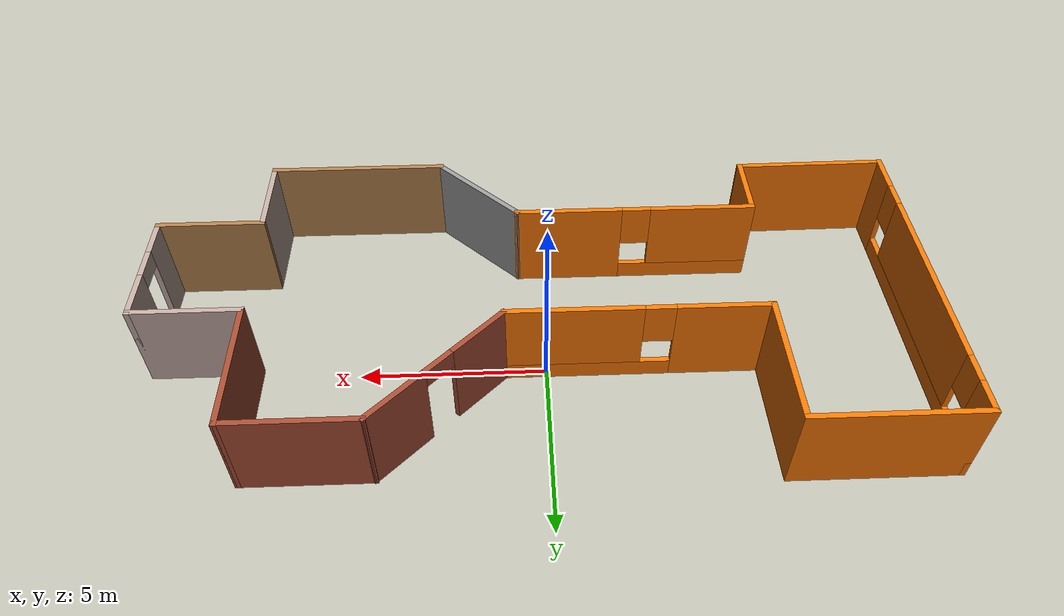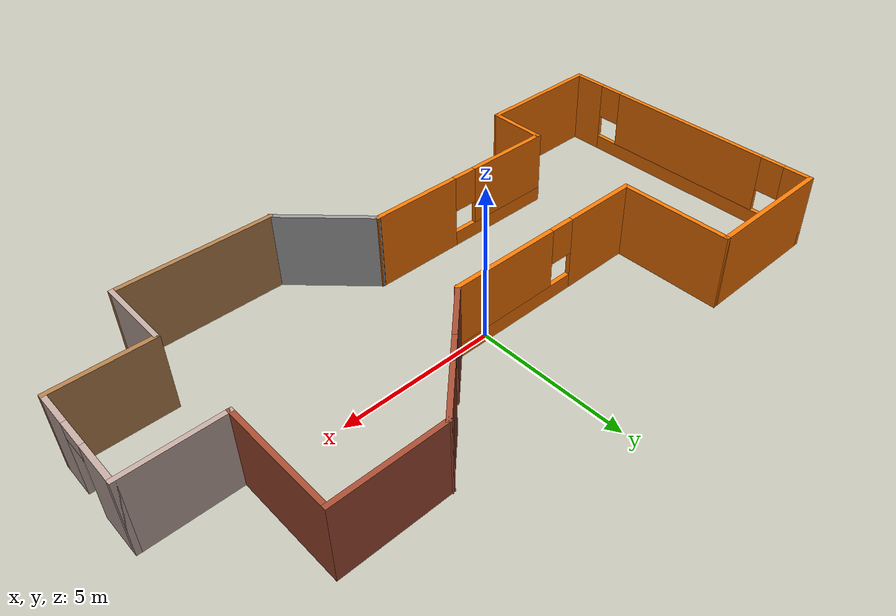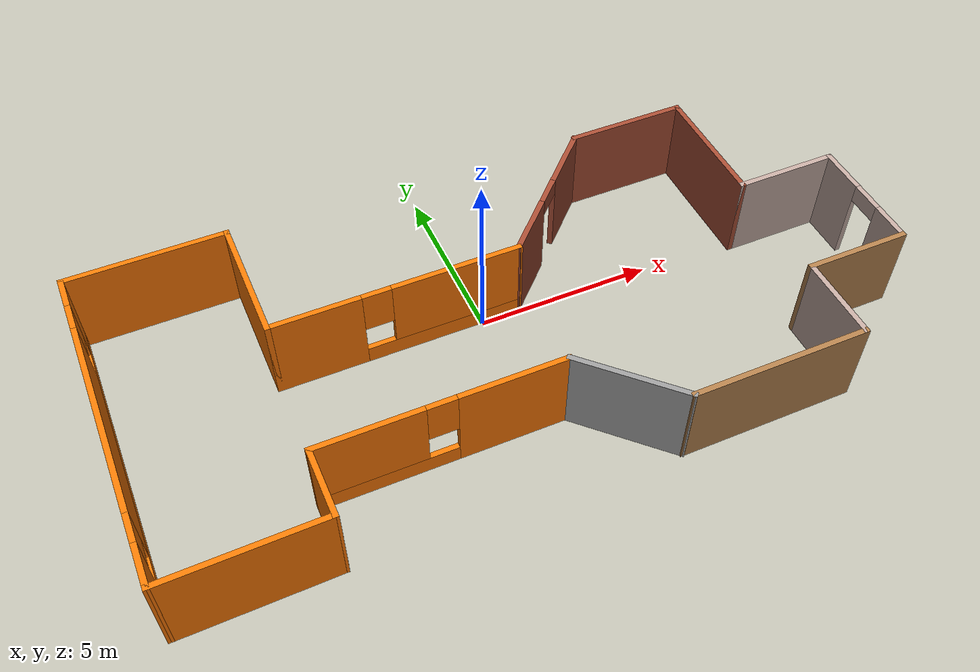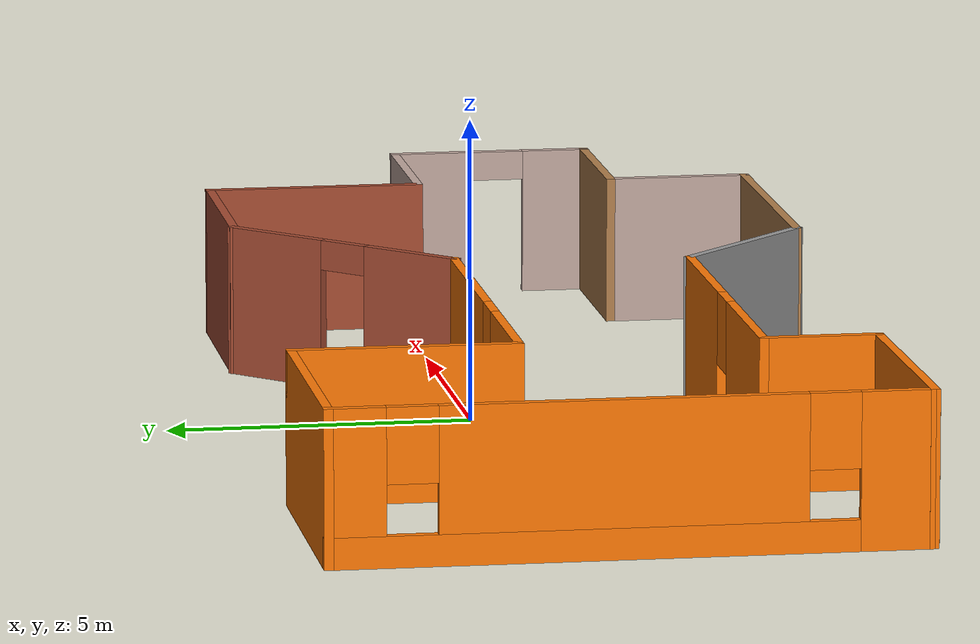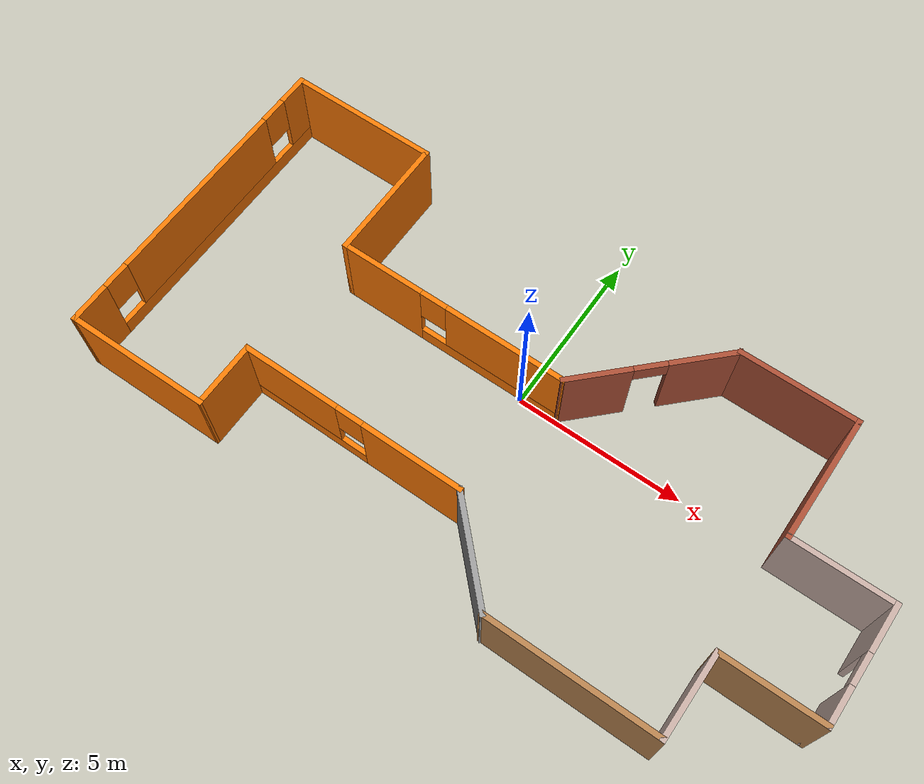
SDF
<?xml version='1.0'?>
<sdf version='1.6'>
  <model name='MyHome'>
    <pose frame=''>0.222356 -1.1403 0 0 -0 0</pose>
    <link name='Wall_1'>
      <pose frame=''>-10.3259 0.164187 0 0 -0 1.5708</pose>
      <visual name='Wall_1_Visual_0'>
        <pose frame=''>-4.13813 0 1.25 0 -0 0</pose>
        <geometry>
          <box>
            <size>1.22375 0.15 2.5</size>
          </box>
        </geometry>
        <material>
          <script>
            <uri>file://media/materials/scripts/gazebo.material</uri>
            <name>Gazebo/Grey</name>
          </script>
          <ambient>0.996078 0.47451 0.0196078 1</ambient>
        </material>
        <meta>
          <layer>0</layer>
        </meta>
      </visual>
      <collision name='Wall_1_Collision_0'>
        <geometry>
          <box>
            <size>1.22375 0.15 2.5</size>
          </box>
        </geometry>
        <pose frame=''>-4.13813 0 1.25 0 -0 0</pose>
      </collision>
      <visual name='Wall_1_Visual_1'>
        <pose frame=''>0.611873 0 0.25 0 -0 0</pose>
        <geometry>
          <box>
            <size>8.27626 0.15 0.5</size>
          </box>
        </geometry>
        <material>
          <script>
            <uri>file://media/materials/scripts/gazebo.material</uri>
            <name>Gazebo/Grey</name>
          </script>
          <ambient>0.996078 0.47451 0.0196078 1</ambient>
        </material>
        <meta>
          <layer>0</layer>
        </meta>
      </visual>
      <collision name='Wall_1_Collision_1'>
        <geometry>
          <box>
            <size>8.27626 0.15 0.5</size>
          </box>
        </geometry>
        <pose frame=''>0.611873 0 0.25 0 -0 0</pose>
      </collision>
      <visual name='Wall_1_Visual_2'>
        <pose frame=''>0.132144 0 1.5 0 -0 0</pose>
        <geometry>
          <box>
            <size>5.7168 0.15 2</size>
          </box>
        </geometry>
        <material>
          <script>
            <uri>file://media/materials/scripts/gazebo.material</uri>
            <name>Gazebo/Grey</name>
          </script>
          <ambient>0.996078 0.47451 0.0196078 1</ambient>
        </material>
        <meta>
          <layer>0</layer>
        </meta>
      </visual>
      <collision name='Wall_1_Collision_2'>
        <geometry>
          <box>
            <size>5.7168 0.15 2</size>
          </box>
        </geometry>
        <pose frame=''>0.132144 0 1.5 0 -0 0</pose>
      </collision>
      <visual name='Wall_1_Visual_3'>
        <pose frame=''>4.27027 0 1.5 0 -0 0</pose>
        <geometry>
          <box>
            <size>0.959458 0.15 2</size>
          </box>
        </geometry>
        <material>
          <script>
            <uri>file://media/materials/scripts/gazebo.material</uri>
            <name>Gazebo/Grey</name>
          </script>
          <ambient>0.996078 0.47451 0.0196078 1</ambient>
        </material>
        <meta>
          <layer>0</layer>
        </meta>
      </visual>
      <collision name='Wall_1_Collision_3'>
        <geometry>
          <box>
            <size>0.959458 0.15 2</size>
          </box>
        </geometry>
        <pose frame=''>4.27027 0 1.5 0 -0 0</pose>
      </collision>
      <visual name='Wall_1_Visual_4'>
        <pose frame=''>-3.12626 0 1.9 0 -0 0</pose>
        <geometry>
          <box>
            <size>0.8 0.15 1.2</size>
          </box>
        </geometry>
        <material>
          <script>
            <uri>file://media/materials/scripts/gazebo.material</uri>
            <name>Gazebo/Grey</name>
          </script>
          <ambient>0.996078 0.47451 0.0196078 1</ambient>
        </material>
        <meta>
          <layer>0</layer>
        </meta>
      </visual>
      <collision name='Wall_1_Collision_4'>
        <geometry>
          <box>
            <size>0.8 0.15 1.2</size>
          </box>
        </geometry>
        <pose frame=''>-3.12626 0 1.9 0 -0 0</pose>
      </collision>
      <visual name='Wall_1_Visual_5'>
        <pose frame=''>3.39054 0 1.9 0 -0 0</pose>
        <geometry>
          <box>
            <size>0.8 0.15 1.2</size>
          </box>
        </geometry>
        <material>
          <script>
            <uri>file://media/materials/scripts/gazebo.material</uri>
            <name>Gazebo/Grey</name>
          </script>
          <ambient>0.996078 0.47451 0.0196078 1</ambient>
        </material>
        <meta>
          <layer>0</layer>
        </meta>
      </visual>
      <collision name='Wall_1_Collision_5'>
        <geometry>
          <box>
            <size>0.8 0.15 1.2</size>
          </box>
        </geometry>
        <pose frame=''>3.39054 0 1.9 0 -0 0</pose>
      </collision>
    </link>
    <link name='Wall_10'>
      <collision name='Wall_10_Collision'>
        <geometry>
          <box>
            <size>3 0.15 2.5</size>
          </box>
        </geometry>
        <pose frame=''>0 0 1.25 0 -0 0</pose>
      </collision>
      <visual name='Wall_10_Visual'>
        <pose frame=''>0 0 1.25 0 -0 0</pose>
        <geometry>
          <box>
            <size>3 0.15 2.5</size>
          </box>
        </geometry>
        <material>
          <script>
            <uri>file://media/materials/scripts/gazebo.material</uri>
            <name>Gazebo/Wood</name>
          </script>
          <ambient>0.760784 0.662745 0.627451 1</ambient>
        </material>
        <meta>
          <layer>0</layer>
        </meta>
      </visual>
      <pose frame=''>8.90175 -2.45812 0 0 -0 3.14159</pose>
    </link>
    <link name='Wall_11'>
      <collision name='Wall_11_Collision'>
        <geometry>
          <box>
            <size>2.5 0.15 2.5</size>
          </box>
        </geometry>
        <pose frame=''>0 0 1.25 0 -0 0</pose>
      </collision>
      <visual name='Wall_11_Visual'>
        <pose frame=''>0 0 1.25 0 -0 0</pose>
        <geometry>
          <box>
            <size>2.5 0.15 2.5</size>
          </box>
        </geometry>
        <material>
          <script>
            <uri>file://media/materials/scripts/gazebo.material</uri>
            <name>Gazebo/Grey</name>
          </script>
          <ambient>0.760784 0.662745 0.627451 1</ambient>
        </material>
        <meta>
          <layer>0</layer>
        </meta>
      </visual>
      <pose frame=''>7.47675 -3.63312 0 0 -0 -1.5708</pose>
    </link>
    <link name='Wall_12'>
      <collision name='Wall_12_Collision'>
        <geometry>
          <box>
            <size>5 0.15 2.5</size>
          </box>
        </geometry>
        <pose frame=''>0 0 1.25 0 -0 0</pose>
      </collision>
      <visual name='Wall_12_Visual'>
        <pose frame=''>0 0 1.25 0 -0 0</pose>
        <geometry>
          <box>
            <size>5 0.15 2.5</size>
          </box>
        </geometry>
        <material>
          <script>
            <uri>file://media/materials/scripts/gazebo.material</uri>
            <name>Gazebo/Wood</name>
          </script>
          <ambient>0.760784 0.662745 0.627451 1</ambient>
        </material>
        <meta>
          <layer>0</layer>
        </meta>
      </visual>
      <pose frame=''>5.05175 -4.80812 0 0 -0 3.14159</pose>
    </link>
    <link name='Wall_13'>
      <collision name='Wall_13_Collision'>
        <geometry>
          <box>
            <size>3.25 0.15 2.5</size>
          </box>
        </geometry>
        <pose frame=''>0 0 1.25 0 -0 0</pose>
      </collision>
      <visual name='Wall_13_Visual'>
        <pose frame=''>0 0 1.25 0 -0 0</pose>
        <geometry>
          <box>
            <size>3.25 0.15 2.5</size>
          </box>
        </geometry>
        <material>
          <script>
            <uri>file://media/materials/scripts/gazebo.material</uri>
            <name>Gazebo/Grey</name>
          </script>
          <ambient>1 1 1 1</ambient>
        </material>
        <meta>
          <layer>0</layer>
        </meta>
      </visual>
      <pose frame=''>1.53073 -3.71211 0 0 -0 2.35619</pose>
    </link>
    <link name='Wall_14'>
      <pose frame=''>-2.86529 -2.61609 0 0 -0 3.14159</pose>
      <visual name='Wall_14_Visual_0'>
        <pose frame=''>-1.86812 0 1.25 0 -0 0</pose>
        <geometry>
          <box>
            <size>3.01375 0.15 2.5</size>
          </box>
        </geometry>
        <material>
          <script>
            <uri>file://media/materials/scripts/gazebo.material</uri>
            <name>Gazebo/Grey</name>
          </script>
          <ambient>0.996078 0.47451 0.0196078 1</ambient>
        </material>
        <meta>
          <layer>0</layer>
        </meta>
      </visual>
      <collision name='Wall_14_Collision_0'>
        <geometry>
          <box>
            <size>3.01375 0.15 2.5</size>
          </box>
        </geometry>
        <pose frame=''>-1.86812 0 1.25 0 -0 0</pose>
      </collision>
      <visual name='Wall_14_Visual_1'>
        <pose frame=''>1.50688 0 0.25 0 -0 0</pose>
        <geometry>
          <box>
            <size>3.73625 0.15 0.5</size>
          </box>
        </geometry>
        <material>
          <script>
            <uri>file://media/materials/scripts/gazebo.material</uri>
            <name>Gazebo/Grey</name>
          </script>
          <ambient>0.996078 0.47451 0.0196078 1</ambient>
        </material>
        <meta>
          <layer>0</layer>
        </meta>
      </visual>
      <collision name='Wall_14_Collision_1'>
        <geometry>
          <box>
            <size>3.73625 0.15 0.5</size>
          </box>
        </geometry>
        <pose frame=''>1.50688 0 0.25 0 -0 0</pose>
      </collision>
      <visual name='Wall_14_Visual_2'>
        <pose frame=''>1.90688 0 1.5 0 -0 0</pose>
        <geometry>
          <box>
            <size>2.93625 0.15 2</size>
          </box>
        </geometry>
        <material>
          <script>
            <uri>file://media/materials/scripts/gazebo.material</uri>
            <name>Gazebo/Grey</name>
          </script>
          <ambient>0.996078 0.47451 0.0196078 1</ambient>
        </material>
        <meta>
          <layer>0</layer>
        </meta>
      </visual>
      <collision name='Wall_14_Collision_2'>
        <geometry>
          <box>
            <size>2.93625 0.15 2</size>
          </box>
        </geometry>
        <pose frame=''>1.90688 0 1.5 0 -0 0</pose>
      </collision>
      <visual name='Wall_14_Visual_3'>
        <pose frame=''>0.038752 0 1.9 0 -0 0</pose>
        <geometry>
          <box>
            <size>0.8 0.15 1.2</size>
          </box>
        </geometry>
        <material>
          <script>
            <uri>file://media/materials/scripts/gazebo.material</uri>
            <name>Gazebo/Grey</name>
          </script>
          <ambient>0.996078 0.47451 0.0196078 1</ambient>
        </material>
        <meta>
          <layer>0</layer>
        </meta>
      </visual>
      <collision name='Wall_14_Collision_3'>
        <geometry>
          <box>
            <size>0.8 0.15 1.2</size>
          </box>
        </geometry>
        <pose frame=''>0.038752 0 1.9 0 -0 0</pose>
      </collision>
    </link>
    <link name='Wall_17'>
      <collision name='Wall_17_Collision'>
        <geometry>
          <box>
            <size>2 0.15 2.5</size>
          </box>
        </geometry>
        <pose frame=''>0 0 1.25 0 -0 0</pose>
      </collision>
      <visual name='Wall_17_Visual'>
        <pose frame=''>0 0 1.25 0 -0 0</pose>
        <geometry>
          <box>
            <size>2 0.15 2.5</size>
          </box>
        </geometry>
        <material>
          <script>
            <uri>file://media/materials/scripts/gazebo.material</uri>
            <name>Gazebo/Grey</name>
          </script>
          <ambient>0.996078 0.47451 0.0196078 1</ambient>
        </material>
        <meta>
          <layer>0</layer>
        </meta>
      </visual>
      <pose frame=''>-6.16528 -3.54109 0 0 -0 -1.5708</pose>
    </link>
    <link name='Wall_18'>
      <collision name='Wall_18_Collision'>
        <geometry>
          <box>
            <size>4.3109 0.15 2.5</size>
          </box>
        </geometry>
        <pose frame=''>0 0 1.25 0 -0 0</pose>
      </collision>
      <visual name='Wall_18_Visual'>
        <pose frame=''>0 0 1.25 0 -0 0</pose>
        <geometry>
          <box>
            <size>4.3109 0.15 2.5</size>
          </box>
        </geometry>
        <material>
          <script>
            <uri>file://media/materials/scripts/gazebo.material</uri>
            <name>Gazebo/Grey</name>
          </script>
          <ambient>0.996078 0.47451 0.0196078 1</ambient>
        </material>
        <meta>
          <layer>0</layer>
        </meta>
      </visual>
      <pose frame=''>-8.24562 -4.48845 0 0 -0 -3.13084</pose>
    </link>
    <link name='Wall_2'>
      <collision name='Wall_2_Collision'>
        <geometry>
          <box>
            <size>4.5 0.15 2.5</size>
          </box>
        </geometry>
        <pose frame=''>0 0 1.25 0 -0 0</pose>
      </collision>
      <visual name='Wall_2_Visual'>
        <pose frame=''>0 0 1.25 0 -0 0</pose>
        <geometry>
          <box>
            <size>4.5 0.15 2.5</size>
          </box>
        </geometry>
        <material>
          <script>
            <uri>file://media/materials/scripts/gazebo.material</uri>
            <name>Gazebo/Grey</name>
          </script>
          <ambient>0.996078 0.47451 0.0196078 1</ambient>
        </material>
        <meta>
          <layer>0</layer>
        </meta>
      </visual>
      <pose frame=''>-8.15095 4.83919 0 0 -0 0</pose>
    </link>
    <link name='Wall_3'>
      <collision name='Wall_3_Collision'>
        <geometry>
          <box>
            <size>3.75 0.15 2.5</size>
          </box>
        </geometry>
        <pose frame=''>0 0 1.25 0 -0 0</pose>
      </collision>
      <visual name='Wall_3_Visual'>
        <pose frame=''>0 0 1.25 0 -0 0</pose>
        <geometry>
          <box>
            <size>3.75 0.15 2.5</size>
          </box>
        </geometry>
        <material>
          <script>
            <uri>file://media/materials/scripts/gazebo.material</uri>
            <name>Gazebo/Grey</name>
          </script>
          <ambient>0.996078 0.47451 0.0196078 1</ambient>
        </material>
        <meta>
          <layer>0</layer>
        </meta>
      </visual>
      <pose frame=''>-5.97595 3.03919 0 0 -0 -1.5708</pose>
    </link>
    <link name='Wall_4'>
      <pose frame=''>-2.55095 1.23919 0 0 -0 0</pose>
      <visual name='Wall_4_Visual_0'>
        <pose frame=''>-2.22711 0 1.25 0 -0 0</pose>
        <geometry>
          <box>
            <size>2.54577 0.15 2.5</size>
          </box>
        </geometry>
        <material>
          <script>
            <uri>file://media/materials/scripts/gazebo.material</uri>
            <name>Gazebo/Grey</name>
          </script>
          <ambient>0.996078 0.47451 0.0196078 1</ambient>
        </material>
        <meta>
          <layer>0</layer>
        </meta>
      </visual>
      <collision name='Wall_4_Collision_0'>
        <geometry>
          <box>
            <size>2.54577 0.15 2.5</size>
          </box>
        </geometry>
        <pose frame=''>-2.22711 0 1.25 0 -0 0</pose>
      </collision>
      <visual name='Wall_4_Visual_1'>
        <pose frame=''>1.27289 0 0.25 0 -0 0</pose>
        <geometry>
          <box>
            <size>4.45423 0.15 0.5</size>
          </box>
        </geometry>
        <material>
          <script>
            <uri>file://media/materials/scripts/gazebo.material</uri>
            <name>Gazebo/Grey</name>
          </script>
          <ambient>0.996078 0.47451 0.0196078 1</ambient>
        </material>
        <meta>
          <layer>0</layer>
        </meta>
      </visual>
      <collision name='Wall_4_Collision_1'>
        <geometry>
          <box>
            <size>4.45423 0.15 0.5</size>
          </box>
        </geometry>
        <pose frame=''>1.27289 0 0.25 0 -0 0</pose>
      </collision>
      <visual name='Wall_4_Visual_2'>
        <pose frame=''>1.67289 0 1.5 0 -0 0</pose>
        <geometry>
          <box>
            <size>3.65423 0.15 2</size>
          </box>
        </geometry>
        <material>
          <script>
            <uri>file://media/materials/scripts/gazebo.material</uri>
            <name>Gazebo/Grey</name>
          </script>
          <ambient>0.996078 0.47451 0.0196078 1</ambient>
        </material>
        <meta>
          <layer>0</layer>
        </meta>
      </visual>
      <collision name='Wall_4_Collision_2'>
        <geometry>
          <box>
            <size>3.65423 0.15 2</size>
          </box>
        </geometry>
        <pose frame=''>1.67289 0 1.5 0 -0 0</pose>
      </collision>
      <visual name='Wall_4_Visual_3'>
        <pose frame=''>-0.554228 0 1.9 0 -0 0</pose>
        <geometry>
          <box>
            <size>0.8 0.15 1.2</size>
          </box>
        </geometry>
        <material>
          <script>
            <uri>file://media/materials/scripts/gazebo.material</uri>
            <name>Gazebo/Grey</name>
          </script>
          <ambient>0.996078 0.47451 0.0196078 1</ambient>
        </material>
        <meta>
          <layer>0</layer>
        </meta>
      </visual>
      <collision name='Wall_4_Collision_3'>
        <geometry>
          <box>
            <size>0.8 0.15 1.2</size>
          </box>
        </geometry>
        <pose frame=''>-0.554228 0 1.9 0 -0 0</pose>
      </collision>
    </link>
    <link name='Wall_5'>
      <pose frame=''>2.5004 2.86553 0 0 -0 0.785398</pose>
      <visual name='Wall_5_Visual_0'>
        <pose frame=''>-1.42979 0 1.25 0 -0 0</pose>
        <geometry>
          <box>
            <size>1.89043 0.15 2.5</size>
          </box>
        </geometry>
        <material>
          <script>
            <uri>file://media/materials/scripts/gazebo.material</uri>
            <name>Gazebo/Bricks</name>
          </script>
          <ambient>0.760784 0.662745 0.627451 1</ambient>
        </material>
        <meta>
          <layer>0</layer>
        </meta>
      </visual>
      <collision name='Wall_5_Collision_0'>
        <geometry>
          <box>
            <size>1.89043 0.15 2.5</size>
          </box>
        </geometry>
        <pose frame=''>-1.42979 0 1.25 0 -0 0</pose>
      </collision>
      <visual name='Wall_5_Visual_1'>
        <pose frame=''>1.39521 0 1.25 0 -0 0</pose>
        <geometry>
          <box>
            <size>1.95957 0.15 2.5</size>
          </box>
        </geometry>
        <material>
          <script>
            <uri>file://media/materials/scripts/gazebo.material</uri>
            <name>Gazebo/Bricks</name>
          </script>
          <ambient>0.760784 0.662745 0.627451 1</ambient>
        </material>
        <meta>
          <layer>0</layer>
        </meta>
      </visual>
      <collision name='Wall_5_Collision_1'>
        <geometry>
          <box>
            <size>1.95957 0.15 2.5</size>
          </box>
        </geometry>
        <pose frame=''>1.39521 0 1.25 0 -0 0</pose>
      </collision>
      <visual name='Wall_5_Visual_2'>
        <pose frame=''>-0.034572 0 2.25 0 -0 0</pose>
        <geometry>
          <box>
            <size>0.9 0.15 0.5</size>
          </box>
        </geometry>
        <material>
          <script>
            <uri>file://media/materials/scripts/gazebo.material</uri>
            <name>Gazebo/Bricks</name>
          </script>
          <ambient>0.760784 0.662745 0.627451 1</ambient>
        </material>
        <meta>
          <layer>0</layer>
        </meta>
      </visual>
      <collision name='Wall_5_Collision_2'>
        <geometry>
          <box>
            <size>0.9 0.15 0.5</size>
          </box>
        </geometry>
        <pose frame=''>-0.034572 0 2.25 0 -0 0</pose>
      </collision>
    </link>
    <link name='Wall_6'>
      <collision name='Wall_6_Collision'>
        <geometry>
          <box>
            <size>3.5 0.15 2.5</size>
          </box>
        </geometry>
        <pose frame=''>0 0 1.25 0 -0 0</pose>
      </collision>
      <visual name='Wall_6_Visual'>
        <pose frame=''>0 0 1.25 0 -0 0</pose>
        <geometry>
          <box>
            <size>3.5 0.15 2.5</size>
          </box>
        </geometry>
        <material>
          <script>
            <uri>file://media/materials/scripts/gazebo.material</uri>
            <name>Gazebo/Bricks</name>
          </script>
          <ambient>0.760784 0.662745 0.627451 1</ambient>
        </material>
        <meta>
          <layer>0</layer>
        </meta>
      </visual>
      <pose frame=''>5.80175 4.49188 0 0 -0 0</pose>
    </link>
    <link name='Wall_7'>
      <collision name='Wall_7_Collision'>
        <geometry>
          <box>
            <size>3.75 0.15 2.5</size>
          </box>
        </geometry>
        <pose frame=''>0 0 1.25 0 -0 0</pose>
      </collision>
      <visual name='Wall_7_Visual'>
        <pose frame=''>0 0 1.25 0 -0 0</pose>
        <geometry>
          <box>
            <size>3.75 0.15 2.5</size>
          </box>
        </geometry>
        <material>
          <script>
            <uri>file://media/materials/scripts/gazebo.material</uri>
            <name>Gazebo/Bricks</name>
          </script>
          <ambient>0.760784 0.662745 0.627451 1</ambient>
        </material>
        <meta>
          <layer>0</layer>
        </meta>
      </visual>
      <pose frame=''>7.47675 2.69188 0 0 -0 -1.5708</pose>
    </link>
    <link name='Wall_8'>
      <collision name='Wall_8_Collision'>
        <geometry>
          <box>
            <size>3 0.15 2.5</size>
          </box>
        </geometry>
        <pose frame=''>0 0 1.25 0 -0 0</pose>
      </collision>
      <visual name='Wall_8_Visual'>
        <pose frame=''>0 0 1.25 0 -0 0</pose>
        <geometry>
          <box>
            <size>3 0.15 2.5</size>
          </box>
        </geometry>
        <material>
          <script>
            <uri>file://media/materials/scripts/gazebo.material</uri>
            <name>Gazebo/Grey</name>
          </script>
          <ambient>0.760784 0.662745 0.627451 1</ambient>
        </material>
        <meta>
          <layer>0</layer>
        </meta>
      </visual>
      <pose frame=''>8.90175 0.891879 0 0 -0 0</pose>
    </link>
    <link name='Wall_9'>
      <pose frame=''>10.3267 -0.783121 0 0 -0 -1.5708</pose>
      <visual name='Wall_9_Visual_0'>
        <pose frame=''>-1.03632 0 1.25 0 -0 0</pose>
        <geometry>
          <box>
            <size>1.42736 0.15 2.5</size>
          </box>
        </geometry>
        <material>
          <script>
            <uri>file://media/materials/scripts/gazebo.material</uri>
            <name>Gazebo/Grey</name>
          </script>
          <ambient>0.760784 0.662745 0.627451 1</ambient>
        </material>
        <meta>
          <layer>0</layer>
        </meta>
      </visual>
      <collision name='Wall_9_Collision_0'>
        <geometry>
          <box>
            <size>1.42736 0.15 2.5</size>
          </box>
        </geometry>
        <pose frame=''>-1.03632 0 1.25 0 -0 0</pose>
      </collision>
      <visual name='Wall_9_Visual_1'>
        <pose frame=''>1.16368 0 1.25 0 -0 0</pose>
        <geometry>
          <box>
            <size>1.17264 0.15 2.5</size>
          </box>
        </geometry>
        <material>
          <script>
            <uri>file://media/materials/scripts/gazebo.material</uri>
            <name>Gazebo/Grey</name>
          </script>
          <ambient>0.760784 0.662745 0.627451 1</ambient>
        </material>
        <meta>
          <layer>0</layer>
        </meta>
      </visual>
      <collision name='Wall_9_Collision_1'>
        <geometry>
          <box>
            <size>1.17264 0.15 2.5</size>
          </box>
        </geometry>
        <pose frame=''>1.16368 0 1.25 0 -0 0</pose>
      </collision>
      <visual name='Wall_9_Visual_2'>
        <pose frame=''>0.127362 0 2.25 0 -0 0</pose>
        <geometry>
          <box>
            <size>0.9 0.15 0.5</size>
          </box>
        </geometry>
        <material>
          <script>
            <uri>file://media/materials/scripts/gazebo.material</uri>
            <name>Gazebo/Grey</name>
          </script>
          <ambient>0.760784 0.662745 0.627451 1</ambient>
        </material>
        <meta>
          <layer>0</layer>
        </meta>
      </visual>
      <collision name='Wall_9_Collision_2'>
        <geometry>
          <box>
            <size>0.9 0.15 0.5</size>
          </box>
        </geometry>
        <pose frame=''>0.127362 0 2.25 0 -0 0</pose>
      </collision>
    </link>
    <static>1</static>
  </model>
</sdf>
